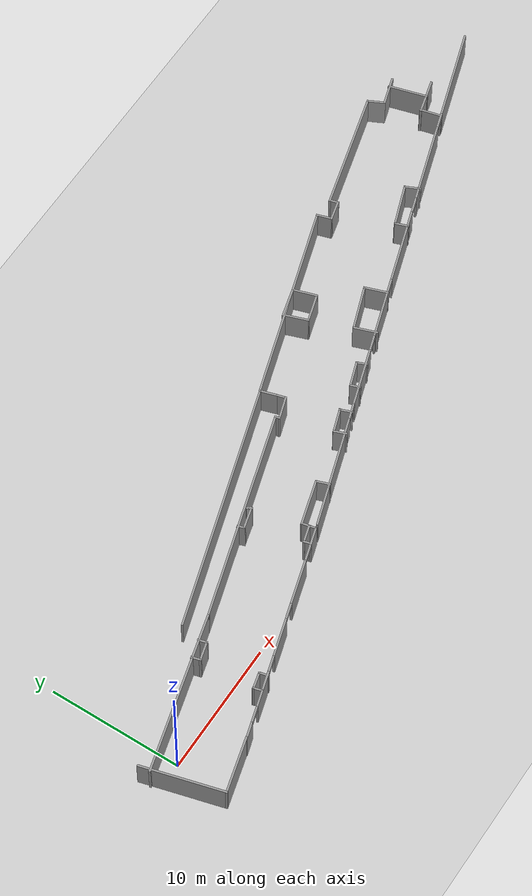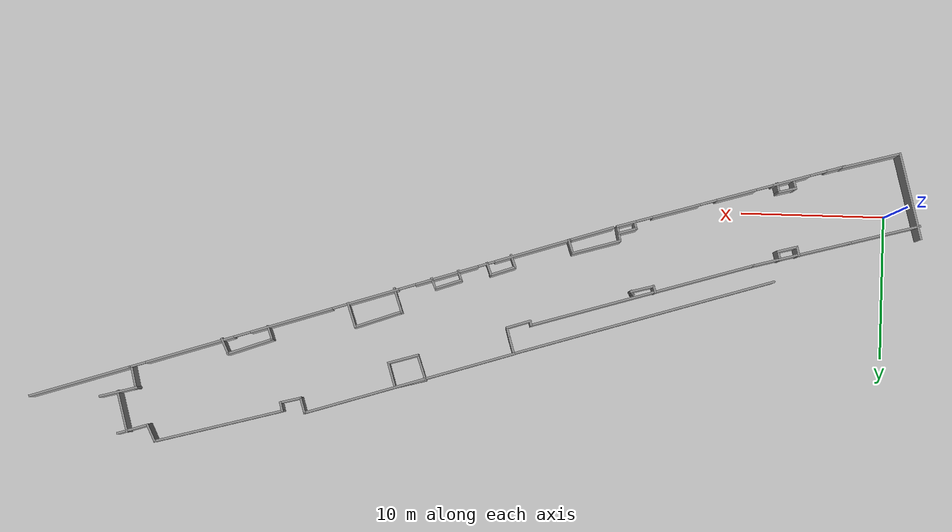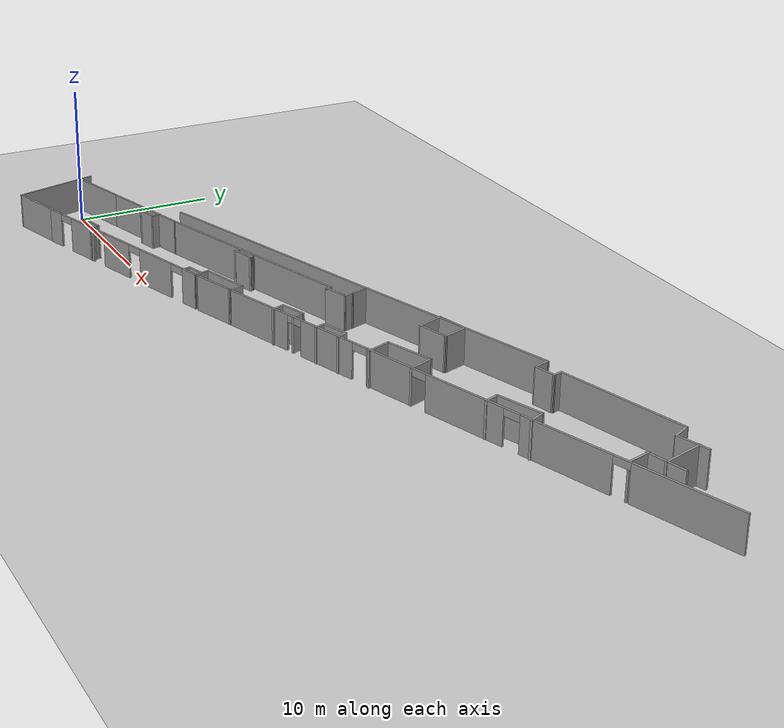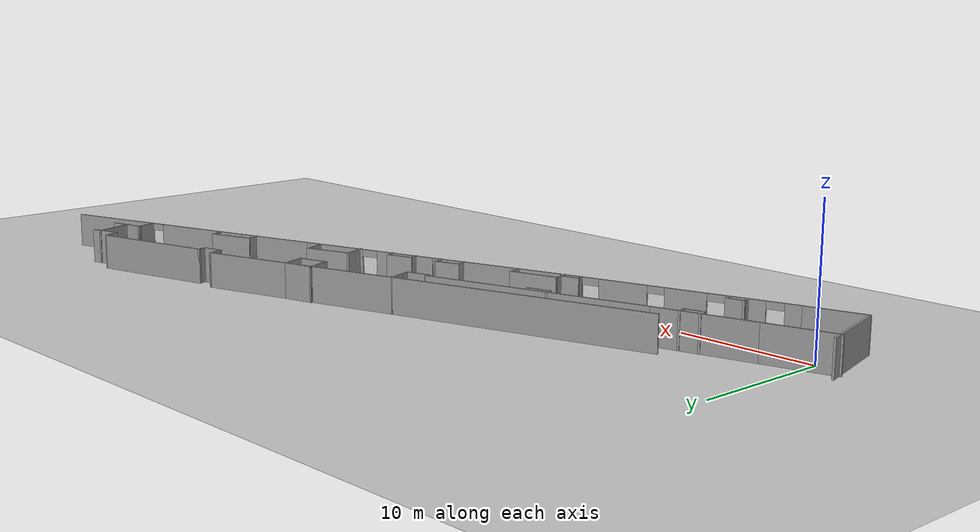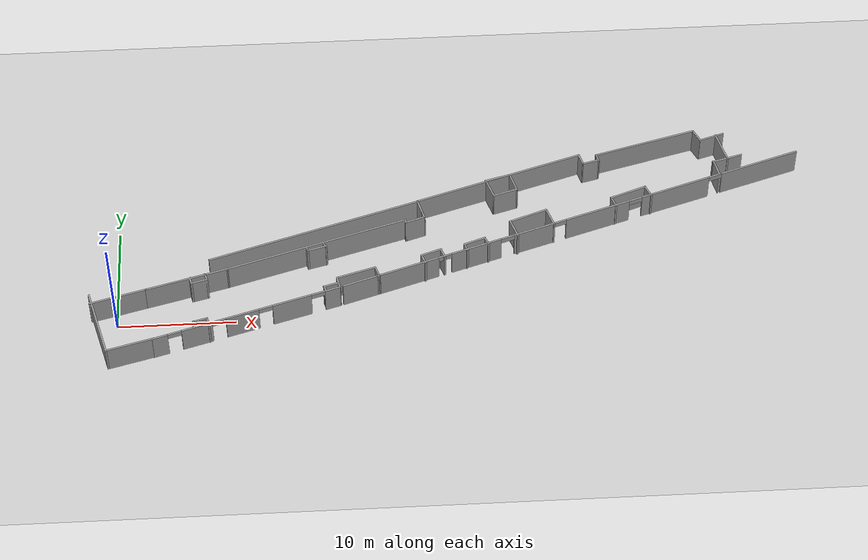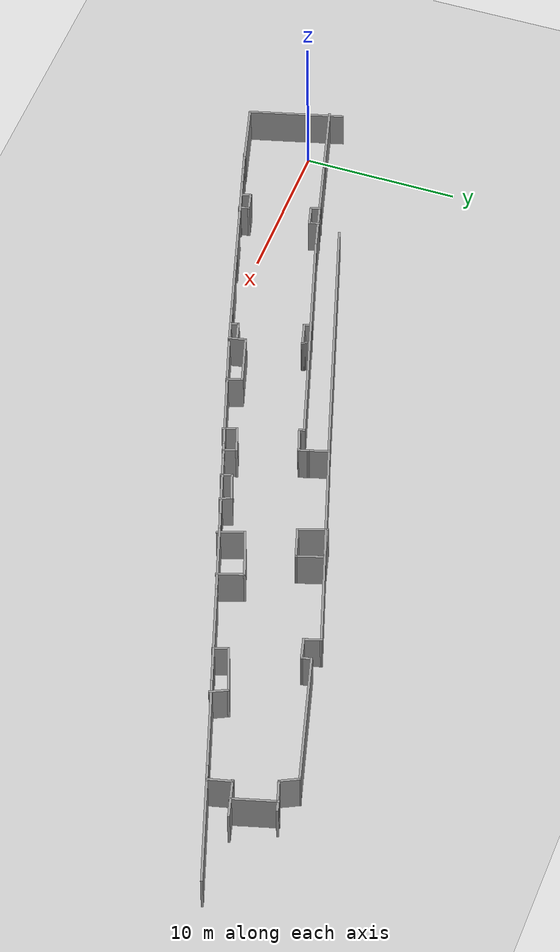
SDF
<sdf version="1.7">
 <world name="default">
  <light name="sun" type="directional">
   <pose>0 0 10 0 -0 0</pose>
   <diffuse>0.8 0.8 0.8 1</diffuse>
   <specular>0.2 0.2 0.2 1</specular>
   <attenuation>
    <range>1000</range>
    <constant>0.9</constant>
    <linear>0.01</linear>
    <quadratic>0.001</quadratic>
   </attenuation>
   <direction>-0.5 0.1 -0.9</direction>
   <spot><inner_angle>0</inner_angle><outer_angle>0</outer_angle><falloff>0</falloff></spot>
  </light>
  <model name="ground_plane">
   <static>1</static>
   <link name="link">
    <collision name="collision">
     <geometry><plane><normal>0 0 1</normal><size>100 100</size></plane></geometry>
     <surface><friction><ode><mu>100</mu><mu2>50</mu2></ode></friction></surface>
    </collision>
    <visual name="visual">
     <cast_shadows>0</cast_shadows>
     <geometry><plane><normal>0 0 1</normal><size>100 100</size></plane></geometry>
     <material>
      <script><uri>file://media/materials/scripts/gazebo.material</uri><name>Gazebo/Grey</name></script>
     </material>
    </visual>
   </link>
  </model>
  <gravity>0 0 -9.8</gravity>
  <magnetic_field>6e-06 2.3e-05 -4.2e-05</magnetic_field>
  <atmosphere type="adiabatic"/>
  <physics type="ode">
   <max_step_size>0.001</max_step_size>
   <real_time_factor>1</real_time_factor>
   <real_time_update_rate>1000</real_time_update_rate>
  </physics>
  <scene><ambient>0.4 0.4 0.4 1</ambient><background>0.7 0.7 0.7 1</background><shadows>1</shadows></scene>
  <audio><device>default</device></audio>
  <spherical_coordinates>
   <surface_model>EARTH_WGS84</surface_model>
   <latitude_deg>0</latitude_deg>
   <longitude_deg>0</longitude_deg>
   <elevation>0</elevation>
   <heading_deg>0</heading_deg>
  </spherical_coordinates>
  <model name="thesis_map_layout">
   <pose>28.5609 7.19501 0 0 -0 0</pose>
   <link name="Wall_100">
    <collision name="Wall_100_Collision">
     <geometry><box><size>1.01029 0.15 2.5</size></box></geometry>
     <pose>0 0 1.25 0 -0 0</pose>
    </collision>
    <visual name="Wall_100_Visual">
     <pose>0 0 1.25 0 -0 0</pose>
     <geometry><box><size>1.01029 0.15 2.5</size></box></geometry>
     <material>
      <script><uri>file://media/materials/scripts/gazebo.material</uri><name>Gazebo/Grey</name></script>
      <ambient>1 1 1 1</ambient>
     </material>
     <meta><layer>0</layer></meta>
    </visual>
    <pose>-2.47238 -3.22286 0 0 -0 1.93203</pose>
   </link>
   <link name="Wall_101">
    <collision name="Wall_101_Collision">
     <geometry><box><size>1.9378 0.15 2.5</size></box></geometry>
     <pose>0 0 1.25 0 -0 0</pose>
    </collision>
    <visual name="Wall_101_Visual">
     <pose>0 0 1.25 0 -0 0</pose>
     <geometry><box><size>1.9378 0.15 2.5</size></box></geometry>
     <material>
      <script><uri>file://media/materials/scripts/gazebo.material</uri><name>Gazebo/Grey</name></script>
      <ambient>1 1 1 1</ambient>
     </material>
     <meta><layer>0</layer></meta>
    </visual>
    <pose>-1.77963 -2.51114 0 0 -0 0.33305</pose>
   </link>
   <link name="Wall_102">
    <collision name="Wall_102_Collision">
     <geometry><box><size>1.00133 0.15 2.5</size></box></geometry>
     <pose>0 0 1.25 0 -0 0</pose>
    </collision>
    <visual name="Wall_102_Visual">
     <pose>0 0 1.25 0 -0 0</pose>
     <geometry><box><size>1.00133 0.15 2.5</size></box></geometry>
     <material>
      <script><uri>file://media/materials/scripts/gazebo.material</uri><name>Gazebo/Grey</name></script>
      <ambient>1 1 1 1</ambient>
     </material>
     <meta><layer>0</layer></meta>
    </visual>
    <pose>-0.808856 -2.62519 0 0 -0 -1.20656</pose>
   </link>
   <link name="Wall_13">
    <collision name="Wall_13_Collision">
     <geometry><box><size>0.434143 0.15 2.5</size></box></geometry>
     <pose>0 0 1.25 0 -0 0</pose>
    </collision>
    <visual name="Wall_13_Visual">
     <pose>0 0 1.25 0 -0 0</pose>
     <geometry><box><size>0.434143 0.15 2.5</size></box></geometry>
     <material>
      <script><uri>file://media/materials/scripts/gazebo.material</uri><name>Gazebo/Grey</name></script>
      <ambient>1 1 1 1</ambient>
     </material>
     <meta><layer>0</layer></meta>
    </visual>
    <pose>-3.81763 1.04916 0 0 -0 -1.34323</pose>
   </link>
   <link name="Wall_14">
    <collision name="Wall_14_Collision">
     <geometry><box><size>1.84256 0.15 2.5</size></box></geometry>
     <pose>0 0 1.25 0 -0 0</pose>
    </collision>
    <visual name="Wall_14_Visual">
     <pose>0 0 1.25 0 -0 0</pose>
     <geometry><box><size>1.84256 0.15 2.5</size></box></geometry>
     <material>
      <script><uri>file://media/materials/scripts/gazebo.material</uri><name>Gazebo/Grey</name></script>
      <ambient>1 1 1 1</ambient>
     </material>
     <meta><layer>0</layer></meta>
    </visual>
    <pose>-2.98913 1.16272 0 0 -0 0.313103</pose>
   </link>
   <link name="Wall_15">
    <collision name="Wall_15_Collision">
     <geometry><box><size>0.75 0.15 2.5</size></box></geometry>
     <pose>0 0 1.25 0 -0 0</pose>
    </collision>
    <visual name="Wall_15_Visual">
     <pose>0 0 1.25 0 -0 0</pose>
     <geometry><box><size>0.75 0.15 2.5</size></box></geometry>
     <material>
      <script><uri>file://media/materials/scripts/gazebo.material</uri><name>Gazebo/Grey</name></script>
      <ambient>1 1 1 1</ambient>
     </material>
     <meta><layer>0</layer></meta>
    </visual>
    <pose>-2.26164 1.71316 0 0 -0 1.8326</pose>
   </link>
   <link name="Wall_17">
    <collision name="Wall_17_Collision">
     <geometry><box><size>2.26603 0.15 2.5</size></box></geometry>
     <pose>0 0 1.25 0 -0 0</pose>
    </collision>
    <visual name="Wall_17_Visual">
     <pose>0 0 1.25 0 -0 0</pose>
     <geometry><box><size>2.26603 0.15 2.5</size></box></geometry>
     <material>
      <script><uri>file://media/materials/scripts/gazebo.material</uri><name>Gazebo/Grey</name></script>
      <ambient>1 1 1 1</ambient>
     </material>
     <meta><layer>0</layer></meta>
    </visual>
    <pose>4.98412 3.82097 0 0 -0 -2.85213</pose>
   </link>
   <link name="Wall_18">
    <collision name="Wall_18_Collision">
     <geometry><box><size>1.96955 0.15 2.5</size></box></geometry>
     <pose>0 0 1.25 0 -0 0</pose>
    </collision>
    <visual name="Wall_18_Visual">
     <pose>0 0 1.25 0 -0 0</pose>
     <geometry><box><size>1.96955 0.15 2.5</size></box></geometry>
     <material>
      <script><uri>file://media/materials/scripts/gazebo.material</uri><name>Gazebo/Grey</name></script>
      <ambient>1 1 1 1</ambient>
     </material>
     <meta><layer>0</layer></meta>
    </visual>
    <pose>3.67271 4.37907 0 0 -0 1.90371</pose>
   </link>
   <link name="Wall_2">
    <collision name="Wall_2_Collision">
     <geometry><box><size>16.1347 0.15 2.5</size></box></geometry>
     <pose>0 0 1.25 0 -0 0</pose>
    </collision>
    <visual name="Wall_2_Visual">
     <pose>0 0 1.25 0 -0 0</pose>
     <geometry><box><size>16.1347 0.15 2.5</size></box></geometry>
     <material>
      <script><uri>file://media/materials/scripts/gazebo.material</uri><name>Gazebo/Grey</name></script>
      <ambient>1 1 1 1</ambient>
     </material>
     <meta><layer>0</layer></meta>
    </visual>
    <pose>-11.5313 -1.10993 0 0 -0 0.291577</pose>
   </link>
   <link name="Wall_20">
    <collision name="Wall_20_Collision">
     <geometry><box><size>1.76663 0.15 2.5</size></box></geometry>
     <pose>0 0 1.25 0 -0 0</pose>
    </collision>
    <visual name="Wall_20_Visual">
     <pose>0 0 1.25 0 -0 0</pose>
     <geometry><box><size>1.76663 0.15 2.5</size></box></geometry>
     <material>
      <script><uri>file://media/materials/scripts/gazebo.material</uri><name>Gazebo/Grey</name></script>
      <ambient>1 1 1 1</ambient>
     </material>
     <meta><layer>0</layer></meta>
    </visual>
    <pose>5.76094 4.8957 0 0 -0 1.8686</pose>
   </link>
   <link name="Wall_22">
    <collision name="Wall_22_Collision">
     <geometry><box><size>0.75 0.15 2.5</size></box></geometry>
     <pose>0 0 1.25 0 -0 0</pose>
    </collision>
    <visual name="Wall_22_Visual">
     <pose>0 0 1.25 0 -0 0</pose>
     <geometry><box><size>0.75 0.15 2.5</size></box></geometry>
     <material>
      <script><uri>file://media/materials/scripts/gazebo.material</uri><name>Gazebo/Grey</name></script>
      <ambient>1 1 1 1</ambient>
     </material>
     <meta><layer>0</layer></meta>
    </visual>
    <pose>13.3395 7.38538 0 0 -0 -1.309</pose>
   </link>
   <link name="Wall_23">
    <collision name="Wall_23_Collision">
     <geometry><box><size>1.59485 0.15 2.5</size></box></geometry>
     <pose>0 0 1.25 0 -0 0</pose>
    </collision>
    <visual name="Wall_23_Visual">
     <pose>0 0 1.25 0 -0 0</pose>
     <geometry><box><size>1.59485 0.15 2.5</size></box></geometry>
     <material>
      <script><uri>file://media/materials/scripts/gazebo.material</uri><name>Gazebo/Grey</name></script>
      <ambient>1 1 1 1</ambient>
     </material>
     <meta><layer>0</layer></meta>
    </visual>
    <pose>12.7168 6.91852 0 0 -0 -2.89394</pose>
   </link>
   <link name="Wall_24">
    <collision name="Wall_24_Collision">
     <geometry><box><size>1.21308 0.15 2.5</size></box></geometry>
     <pose>0 0 1.25 0 -0 0</pose>
    </collision>
    <visual name="Wall_24_Visual">
     <pose>0 0 1.25 0 -0 0</pose>
     <geometry><box><size>1.21308 0.15 2.5</size></box></geometry>
     <material>
      <script><uri>file://media/materials/scripts/gazebo.material</uri><name>Gazebo/Grey</name></script>
      <ambient>1 1 1 1</ambient>
     </material>
     <meta><layer>0</layer></meta>
    </visual>
    <pose>11.8621 7.2501 0 0 -0 1.86524</pose>
   </link>
   <link name="Wall_26">
    <collision name="Wall_26_Collision">
     <geometry><box><size>0.602454 0.15 2.5</size></box></geometry>
     <pose>0 0 1.25 0 -0 0</pose>
    </collision>
    <visual name="Wall_26_Visual">
     <pose>0 0 1.25 0 -0 0</pose>
     <geometry><box><size>0.602454 0.15 2.5</size></box></geometry>
     <material>
      <script><uri>file://media/materials/scripts/gazebo.material</uri><name>Gazebo/Grey</name></script>
      <ambient>1 1 1 1</ambient>
     </material>
     <meta><layer>0</layer></meta>
    </visual>
    <pose>-12.3629 -1.56534 0 0 -0 -1.25823</pose>
   </link>
   <link name="Wall_27">
    <collision name="Wall_27_Collision">
     <geometry><box><size>1.75 0.15 2.5</size></box></geometry>
     <pose>0 0 1.25 0 -0 0</pose>
    </collision>
    <visual name="Wall_27_Visual">
     <pose>0 0 1.25 0 -0 0</pose>
     <geometry><box><size>1.75 0.15 2.5</size></box></geometry>
     <material>
      <script><uri>file://media/materials/scripts/gazebo.material</uri><name>Gazebo/Grey</name></script>
      <ambient>1 1 1 1</ambient>
     </material>
     <meta><layer>0</layer></meta>
    </visual>
    <pose>-11.5205 -1.55842 0 0 -0 0.261799</pose>
   </link>
   <link name="Wall_28">
    <collision name="Wall_28_Collision">
     <geometry><box><size>0.354386 0.15 2.5</size></box></geometry>
     <pose>0 0 1.25 0 -0 0</pose>
    </collision>
    <visual name="Wall_28_Visual">
     <pose>0 0 1.25 0 -0 0</pose>
     <geometry><box><size>0.354386 0.15 2.5</size></box></geometry>
     <material>
      <script><uri>file://media/materials/scripts/gazebo.material</uri><name>Gazebo/Grey</name></script>
      <ambient>1 1 1 1</ambient>
     </material>
     <meta><layer>0</layer></meta>
    </visual>
    <pose>-10.7971 -1.27696 0 0 -0 2.0739</pose>
   </link>
   <link name="Wall_29">
    <collision name="Wall_29_Collision">
     <geometry><box><size>0.25 0.15 2.5</size></box></geometry>
     <pose>0 0 1.25 0 -0 0</pose>
    </collision>
    <visual name="Wall_29_Visual">
     <pose>0 0 1.25 0 -0 0</pose>
     <geometry><box><size>0.25 0.15 2.5</size></box></geometry>
     <material>
      <script><uri>file://media/materials/scripts/gazebo.material</uri><name>Gazebo/Grey</name></script>
      <ambient>1 1 1 1</ambient>
     </material>
     <meta><layer>0</layer></meta>
    </visual>
    <pose>-10.8817 -1.15208 0 0 -0 2.35619</pose>
   </link>
   <link name="Wall_31">
    <collision name="Wall_31_Collision">
     <geometry><box><size>1.17965 0.15 2.5</size></box></geometry>
     <pose>0 0 1.25 0 -0 0</pose>
    </collision>
    <visual name="Wall_31_Visual">
     <pose>0 0 1.25 0 -0 0</pose>
     <geometry><box><size>1.17965 0.15 2.5</size></box></geometry>
     <material>
      <script><uri>file://media/materials/scripts/gazebo.material</uri><name>Gazebo/Grey</name></script>
      <ambient>1 1 1 1</ambient>
     </material>
     <meta><layer>0</layer></meta>
    </visual>
    <pose>-9.7846 -5.36556 0 0 -0 1.77167</pose>
   </link>
   <link name="Wall_32">
    <collision name="Wall_32_Collision">
     <geometry><box><size>3.54691 0.15 2.5</size></box></geometry>
     <pose>0 0 1.25 0 -0 0</pose>
    </collision>
    <visual name="Wall_32_Visual">
     <pose>0 0 1.25 0 -0 0</pose>
     <geometry><box><size>3.54691 0.15 2.5</size></box></geometry>
     <material>
      <script><uri>file://media/materials/scripts/gazebo.material</uri><name>Gazebo/Grey</name></script>
      <ambient>1 1 1 1</ambient>
     </material>
     <meta><layer>0</layer></meta>
    </visual>
    <pose>-8.25695 -4.38504 0 0 -0 0.284091</pose>
   </link>
   <link name="Wall_33">
    <collision name="Wall_33_Collision">
     <geometry><box><size>1.09945 0.15 2.5</size></box></geometry>
     <pose>0 0 1.25 0 -0 0</pose>
    </collision>
    <visual name="Wall_33_Visual">
     <pose>0 0 1.25 0 -0 0</pose>
     <geometry><box><size>1.09945 0.15 2.5</size></box></geometry>
     <material>
      <script><uri>file://media/materials/scripts/gazebo.material</uri><name>Gazebo/Grey</name></script>
      <ambient>1 1 1 1</ambient>
     </material>
     <meta><layer>0</layer></meta>
    </visual>
    <pose>-6.4563 -4.35765 0 0 -0 -1.23785</pose>
   </link>
   <link name="Wall_34">
    <collision name="Wall_34_Collision">
     <geometry><box><size>0.332125 0.15 2.5</size></box></geometry>
     <pose>0 0 1.25 0 -0 0</pose>
    </collision>
    <visual name="Wall_34_Visual">
     <pose>0 0 1.25 0 -0 0</pose>
     <geometry><box><size>0.332125 0.15 2.5</size></box></geometry>
     <material>
      <script><uri>file://media/materials/scripts/gazebo.material</uri><name>Gazebo/Grey</name></script>
      <ambient>1 1 1 1</ambient>
     </material>
     <meta><layer>0</layer></meta>
    </visual>
    <pose>-6.38976 -4.82725 0 0 -0 -2.90945</pose>
   </link>
   <link name="Wall_36">
    <collision name="Wall_36_Collision">
     <geometry><box><size>2.25 0.15 2.5</size></box></geometry>
     <pose>0 0 1.25 0 -0 0</pose>
    </collision>
    <visual name="Wall_36_Visual">
     <pose>0 0 1.25 0 -0 0</pose>
     <geometry><box><size>2.25 0.15 2.5</size></box></geometry>
     <material>
      <script><uri>file://media/materials/scripts/gazebo.material</uri><name>Gazebo/Grey</name></script>
      <ambient>1 1 1 1</ambient>
     </material>
     <meta><layer>0</layer></meta>
    </visual>
    <pose>4.38953 5.51094 0 0 -0 -2.87979</pose>
   </link>
   <link name="Wall_38">
    <collision name="Wall_38_Collision">
     <geometry><box><size>1.42806 0.15 2.5</size></box></geometry>
     <pose>0 0 1.25 0 -0 0</pose>
    </collision>
    <visual name="Wall_38_Visual">
     <pose>0 0 1.25 0 -0 0</pose>
     <geometry><box><size>1.42806 0.15 2.5</size></box></geometry>
     <material>
      <script><uri>file://media/materials/scripts/gazebo.material</uri><name>Gazebo/Grey</name></script>
      <ambient>1 1 1 1</ambient>
     </material>
     <meta><layer>0</layer></meta>
    </visual>
    <pose>-2.52388 2.61473 0 0 -0 1.86383</pose>
   </link>
   <link name="Wall_39">
    <collision name="Wall_39_Collision">
     <geometry><box><size>18.9511 0.15 2.5</size></box></geometry>
     <pose>0 0 1.25 0 -0 0</pose>
    </collision>
    <visual name="Wall_39_Visual">
     <pose>0 0 1.25 0 -0 0</pose>
     <geometry><box><size>18.9511 0.15 2.5</size></box></geometry>
     <material>
      <script><uri>file://media/materials/scripts/gazebo.material</uri><name>Gazebo/Grey</name></script>
      <ambient>1 1 1 1</ambient>
     </material>
     <meta><layer>0</layer></meta>
    </visual>
    <pose>-11.692 0.437399 0 0 -0 -2.8426</pose>
   </link>
   <link name="Wall_4">
    <pose>10.7384 0.684157 0 0 -0 0.310961</pose>
    <visual name="Wall_4_Visual_0">
     <pose>-16.8528 0 1.25 0 -0 0</pose>
     <geometry><box><size>8.65054 0.15 2.5</size></box></geometry>
     <material>
      <script><uri>file://media/materials/scripts/gazebo.material</uri><name>Gazebo/Grey</name></script>
      <ambient>1 1 1 1</ambient>
     </material>
     <meta><layer>0</layer></meta>
    </visual>
    <collision name="Wall_4_Collision_0">
     <geometry><box><size>8.65054 0.15 2.5</size></box></geometry>
     <pose>-16.8528 0 1.25 0 -0 0</pose>
    </collision>
    <visual name="Wall_4_Visual_1">
     <pose>-9.05488 0 1.25 0 -0 0</pose>
     <geometry><box><size>4.54538 0.15 2.5</size></box></geometry>
     <material>
      <script><uri>file://media/materials/scripts/gazebo.material</uri><name>Gazebo/Grey</name></script>
      <ambient>1 1 1 1</ambient>
     </material>
     <meta><layer>0</layer></meta>
    </visual>
    <collision name="Wall_4_Collision_1">
     <geometry><box><size>4.54538 0.15 2.5</size></box></geometry>
     <pose>-9.05488 0 1.25 0 -0 0</pose>
    </collision>
    <visual name="Wall_4_Visual_2">
     <pose>-3.77148 0 1.25 0 -0 0</pose>
     <geometry><box><size>3.62143 0.15 2.5</size></box></geometry>
     <material>
      <script><uri>file://media/materials/scripts/gazebo.material</uri><name>Gazebo/Grey</name></script>
      <ambient>1 1 1 1</ambient>
     </material>
     <meta><layer>0</layer></meta>
    </visual>
    <collision name="Wall_4_Collision_2">
     <geometry><box><size>3.62143 0.15 2.5</size></box></geometry>
     <pose>-3.77148 0 1.25 0 -0 0</pose>
    </collision>
    <visual name="Wall_4_Visual_3">
     <pose>2.19963 0 1.25 0 -0 0</pose>
     <geometry><box><size>5.92078 0.15 2.5</size></box></geometry>
     <material>
      <script><uri>file://media/materials/scripts/gazebo.material</uri><name>Gazebo/Grey</name></script>
      <ambient>1 1 1 1</ambient>
     </material>
     <meta><layer>0</layer></meta>
    </visual>
    <collision name="Wall_4_Collision_3">
     <geometry><box><size>5.92078 0.15 2.5</size></box></geometry>
     <pose>2.19963 0 1.25 0 -0 0</pose>
    </collision>
    <visual name="Wall_4_Visual_4">
     <pose>9.54887 0 1.25 0 -0 0</pose>
     <geometry><box><size>6.3777 0.15 2.5</size></box></geometry>
     <material>
      <script><uri>file://media/materials/scripts/gazebo.material</uri><name>Gazebo/Grey</name></script>
      <ambient>1 1 1 1</ambient>
     </material>
     <meta><layer>0</layer></meta>
    </visual>
    <collision name="Wall_4_Collision_4">
     <geometry><box><size>6.3777 0.15 2.5</size></box></geometry>
     <pose>9.54887 0 1.25 0 -0 0</pose>
    </collision>
    <visual name="Wall_4_Visual_5">
     <pose>17.5579 0 1.25 0 -0 0</pose>
     <geometry><box><size>7.24039 0.15 2.5</size></box></geometry>
     <material>
      <script><uri>file://media/materials/scripts/gazebo.material</uri><name>Gazebo/Grey</name></script>
      <ambient>1 1 1 1</ambient>
     </material>
     <meta><layer>0</layer></meta>
    </visual>
    <collision name="Wall_4_Collision_5">
     <geometry><box><size>7.24039 0.15 2.5</size></box></geometry>
     <pose>17.5579 0 1.25 0 -0 0</pose>
    </collision>
    <visual name="Wall_4_Visual_6">
     <pose>-11.9276 0 2.25 0 -0 0</pose>
     <geometry><box><size>1.2 0.15 0.5</size></box></geometry>
     <material>
      <script><uri>file://media/materials/scripts/gazebo.material</uri><name>Gazebo/Grey</name></script>
      <ambient>1 1 1 1</ambient>
     </material>
     <meta><layer>0</layer></meta>
    </visual>
    <collision name="Wall_4_Collision_6">
     <geometry><box><size>1.2 0.15 0.5</size></box></geometry>
     <pose>-11.9276 0 2.25 0 -0 0</pose>
    </collision>
    <visual name="Wall_4_Visual_7">
     <pose>-6.18219 0 2.25 0 -0 0</pose>
     <geometry><box><size>1.2 0.15 0.5</size></box></geometry>
     <material>
      <script><uri>file://media/materials/scripts/gazebo.material</uri><name>Gazebo/Grey</name></script>
      <ambient>1 1 1 1</ambient>
     </material>
     <meta><layer>0</layer></meta>
    </visual>
    <collision name="Wall_4_Collision_7">
     <geometry><box><size>1.2 0.15 0.5</size></box></geometry>
     <pose>-6.18219 0 2.25 0 -0 0</pose>
    </collision>
    <visual name="Wall_4_Visual_8">
     <pose>-1.36076 0 2.25 0 -0 0</pose>
     <geometry><box><size>1.2 0.15 0.5</size></box></geometry>
     <material>
      <script><uri>file://media/materials/scripts/gazebo.material</uri><name>Gazebo/Grey</name></script>
      <ambient>1 1 1 1</ambient>
     </material>
     <meta><layer>0</layer></meta>
    </visual>
    <collision name="Wall_4_Collision_8">
     <geometry><box><size>1.2 0.15 0.5</size></box></geometry>
     <pose>-1.36076 0 2.25 0 -0 0</pose>
    </collision>
    <visual name="Wall_4_Visual_9">
     <pose>5.76002 0 2.25 0 -0 0</pose>
     <geometry><box><size>1.2 0.15 0.5</size></box></geometry>
     <material>
      <script><uri>file://media/materials/scripts/gazebo.material</uri><name>Gazebo/Grey</name></script>
      <ambient>1 1 1 1</ambient>
     </material>
     <meta><layer>0</layer></meta>
    </visual>
    <collision name="Wall_4_Collision_9">
     <geometry><box><size>1.2 0.15 0.5</size></box></geometry>
     <pose>5.76002 0 2.25 0 -0 0</pose>
    </collision>
    <visual name="Wall_4_Visual_10">
     <pose>13.3377 0 2.25 0 -0 0</pose>
     <geometry><box><size>1.2 0.15 0.5</size></box></geometry>
     <material>
      <script><uri>file://media/materials/scripts/gazebo.material</uri><name>Gazebo/Grey</name></script>
      <ambient>1 1 1 1</ambient>
     </material>
     <meta><layer>0</layer></meta>
    </visual>
    <collision name="Wall_4_Collision_10">
     <geometry><box><size>1.2 0.15 0.5</size></box></geometry>
     <pose>13.3377 0 2.25 0 -0 0</pose>
    </collision>
   </link>
   <link name="Wall_41">
    <collision name="Wall_41_Collision">
     <geometry><box><size>7.25 0.15 2.5</size></box></geometry>
     <pose>0 0 1.25 0 -0 0</pose>
    </collision>
    <visual name="Wall_41_Visual">
     <pose>0 0 1.25 0 -0 0</pose>
     <geometry><box><size>7.25 0.15 2.5</size></box></geometry>
     <material>
      <script><uri>file://media/materials/scripts/gazebo.material</uri><name>Gazebo/Grey</name></script>
      <ambient>1 1 1 1</ambient>
     </material>
     <meta><layer>0</layer></meta>
    </visual>
    <pose>-22.6153 -4.32624 0 0 -0 -2.87979</pose>
   </link>
   <link name="Wall_44">
    <pose>-17.5329 -8.19653 0 0 -0 0.288088</pose>
    <visual name="Wall_44_Visual_0">
     <pose>-7.5899 0 1.25 0 -0 0</pose>
     <geometry><box><size>1.3471 0.15 2.5</size></box></geometry>
     <material>
      <script><uri>file://media/materials/scripts/gazebo.material</uri><name>Gazebo/Grey</name></script>
      <ambient>1 1 1 1</ambient>
     </material>
     <meta><layer>0</layer></meta>
    </visual>
    <collision name="Wall_44_Collision_0">
     <geometry><box><size>1.3471 0.15 2.5</size></box></geometry>
     <pose>-7.5899 0 1.25 0 -0 0</pose>
    </collision>
    <visual name="Wall_44_Visual_1">
     <pose>-4.37869 0 1.25 0 -0 0</pose>
     <geometry><box><size>2.67533 0.15 2.5</size></box></geometry>
     <material>
      <script><uri>file://media/materials/scripts/gazebo.material</uri><name>Gazebo/Grey</name></script>
      <ambient>1 1 1 1</ambient>
     </material>
     <meta><layer>0</layer></meta>
    </visual>
    <collision name="Wall_44_Collision_1">
     <geometry><box><size>2.67533 0.15 2.5</size></box></geometry>
     <pose>-4.37869 0 1.25 0 -0 0</pose>
    </collision>
    <visual name="Wall_44_Visual_2">
     <pose>-0.404709 0 1.25 0 -0 0</pose>
     <geometry><box><size>2.87263 0.15 2.5</size></box></geometry>
     <material>
      <script><uri>file://media/materials/scripts/gazebo.material</uri><name>Gazebo/Grey</name></script>
      <ambient>1 1 1 1</ambient>
     </material>
     <meta><layer>0</layer></meta>
    </visual>
    <collision name="Wall_44_Collision_2">
     <geometry><box><size>2.87263 0.15 2.5</size></box></geometry>
     <pose>-0.404709 0 1.25 0 -0 0</pose>
    </collision>
    <visual name="Wall_44_Visual_3">
     <pose>3.9434 0 1.25 0 -0 0</pose>
     <geometry><box><size>3.42359 0.15 2.5</size></box></geometry>
     <material>
      <script><uri>file://media/materials/scripts/gazebo.material</uri><name>Gazebo/Grey</name></script>
      <ambient>1 1 1 1</ambient>
     </material>
     <meta><layer>0</layer></meta>
    </visual>
    <collision name="Wall_44_Collision_3">
     <geometry><box><size>3.42359 0.15 2.5</size></box></geometry>
     <pose>3.9434 0 1.25 0 -0 0</pose>
    </collision>
    <visual name="Wall_44_Visual_4">
     <pose>7.55932 0 1.25 0 -0 0</pose>
     <geometry><box><size>1.40826 0.15 2.5</size></box></geometry>
     <material>
      <script><uri>file://media/materials/scripts/gazebo.material</uri><name>Gazebo/Grey</name></script>
      <ambient>1 1 1 1</ambient>
     </material>
     <meta><layer>0</layer></meta>
    </visual>
    <collision name="Wall_44_Collision_4">
     <geometry><box><size>1.40826 0.15 2.5</size></box></geometry>
     <pose>7.55932 0 1.25 0 -0 0</pose>
    </collision>
    <visual name="Wall_44_Visual_5">
     <pose>-6.31635 0 2.25 0 -0 0</pose>
     <geometry><box><size>1.2 0.15 0.5</size></box></geometry>
     <material>
      <script><uri>file://media/materials/scripts/gazebo.material</uri><name>Gazebo/Grey</name></script>
      <ambient>1 1 1 1</ambient>
     </material>
     <meta><layer>0</layer></meta>
    </visual>
    <collision name="Wall_44_Collision_5">
     <geometry><box><size>1.2 0.15 0.5</size></box></geometry>
     <pose>-6.31635 0 2.25 0 -0 0</pose>
    </collision>
    <visual name="Wall_44_Visual_6">
     <pose>-2.44102 0 2.25 0 -0 0</pose>
     <geometry><box><size>1.2 0.15 0.5</size></box></geometry>
     <material>
      <script><uri>file://media/materials/scripts/gazebo.material</uri><name>Gazebo/Grey</name></script>
      <ambient>1 1 1 1</ambient>
     </material>
     <meta><layer>0</layer></meta>
    </visual>
    <collision name="Wall_44_Collision_6">
     <geometry><box><size>1.2 0.15 0.5</size></box></geometry>
     <pose>-2.44102 0 2.25 0 -0 0</pose>
    </collision>
    <visual name="Wall_44_Visual_7">
     <pose>1.63161 0 2.25 0 -0 0</pose>
     <geometry><box><size>1.2 0.15 0.5</size></box></geometry>
     <material>
      <script><uri>file://media/materials/scripts/gazebo.material</uri><name>Gazebo/Grey</name></script>
      <ambient>1 1 1 1</ambient>
     </material>
     <meta><layer>0</layer></meta>
    </visual>
    <collision name="Wall_44_Collision_7">
     <geometry><box><size>1.2 0.15 0.5</size></box></geometry>
     <pose>1.63161 0 2.25 0 -0 0</pose>
    </collision>
    <visual name="Wall_44_Visual_8">
     <pose>6.25519 0 2.25 0 -0 0</pose>
     <geometry><box><size>1.2 0.15 0.5</size></box></geometry>
     <material>
      <script><uri>file://media/materials/scripts/gazebo.material</uri><name>Gazebo/Grey</name></script>
      <ambient>1 1 1 1</ambient>
     </material>
     <meta><layer>0</layer></meta>
    </visual>
    <collision name="Wall_44_Collision_8">
     <geometry><box><size>1.2 0.15 0.5</size></box></geometry>
     <pose>6.25519 0 2.25 0 -0 0</pose>
    </collision>
   </link>
   <link name="Wall_46">
    <collision name="Wall_46_Collision">
     <geometry><box><size>1.0572 0.15 2.5</size></box></geometry>
     <pose>0 0 1.25 0 -0 0</pose>
    </collision>
    <visual name="Wall_46_Visual">
     <pose>0 0 1.25 0 -0 0</pose>
     <geometry><box><size>1.0572 0.15 2.5</size></box></geometry>
     <material>
      <script><uri>file://media/materials/scripts/gazebo.material</uri><name>Gazebo/Grey</name></script>
      <ambient>1 1 1 1</ambient>
     </material>
     <meta><layer>0</layer></meta>
    </visual>
    <pose>14.302 2.25564 0 0 -0 1.91429</pose>
   </link>
   <link name="Wall_47">
    <collision name="Wall_47_Collision">
     <geometry><box><size>3.36711 0.15 2.5</size></box></geometry>
     <pose>0 0 1.25 0 -0 0</pose>
    </collision>
    <visual name="Wall_47_Visual">
     <pose>0 0 1.25 0 -0 0</pose>
     <geometry><box><size>3.36711 0.15 2.5</size></box></geometry>
     <material>
      <script><uri>file://media/materials/scripts/gazebo.material</uri><name>Gazebo/Grey</name></script>
      <ambient>1 1 1 1</ambient>
     </material>
     <meta><layer>0</layer></meta>
    </visual>
    <pose>15.6633 3.27138 0 0 -0 0.344434</pose>
   </link>
   <link name="Wall_48">
    <collision name="Wall_48_Collision">
     <geometry><box><size>1.20616 0.15 2.5</size></box></geometry>
     <pose>0 0 1.25 0 -0 0</pose>
    </collision>
    <visual name="Wall_48_Visual">
     <pose>0 0 1.25 0 -0 0</pose>
     <geometry><box><size>1.20616 0.15 2.5</size></box></geometry>
     <material>
      <script><uri>file://media/materials/scripts/gazebo.material</uri><name>Gazebo/Grey</name></script>
      <ambient>1 1 1 1</ambient>
     </material>
     <meta><layer>0</layer></meta>
    </visual>
    <pose>17.4009 3.29061 0 0 -0 -1.13373</pose>
   </link>
   <link name="Wall_50">
    <collision name="Wall_50_Collision">
     <geometry><box><size>2.00393 0.15 2.5</size></box></geometry>
     <pose>0 0 1.25 0 -0 0</pose>
    </collision>
    <visual name="Wall_50_Visual">
     <pose>0 0 1.25 0 -0 0</pose>
     <geometry><box><size>2.00393 0.15 2.5</size></box></geometry>
     <material>
      <script><uri>file://media/materials/scripts/gazebo.material</uri><name>Gazebo/Grey</name></script>
      <ambient>1 1 1 1</ambient>
     </material>
     <meta><layer>0</layer></meta>
    </visual>
    <pose>1.99446 -1.4773 0 0 -0 0.336031</pose>
   </link>
   <link name="Wall_52">
    <collision name="Wall_52_Collision">
     <geometry><box><size>0.802448 0.15 2.5</size></box></geometry>
     <pose>0 0 1.25 0 -0 0</pose>
    </collision>
    <visual name="Wall_52_Visual">
     <pose>0 0 1.25 0 -0 0</pose>
     <geometry><box><size>0.802448 0.15 2.5</size></box></geometry>
     <material>
      <script><uri>file://media/materials/scripts/gazebo.material</uri><name>Gazebo/Grey</name></script>
      <ambient>1 1 1 1</ambient>
     </material>
     <meta><layer>0</layer></meta>
    </visual>
    <pose>1.21185 -2.10716 0 0 -0 -1.2289</pose>
   </link>
   <link name="Wall_55">
    <collision name="Wall_55_Collision">
     <geometry><box><size>0.86098 0.15 2.5</size></box></geometry>
     <pose>0 0 1.25 0 -0 0</pose>
    </collision>
    <visual name="Wall_55_Visual">
     <pose>0 0 1.25 0 -0 0</pose>
     <geometry><box><size>0.86098 0.15 2.5</size></box></geometry>
     <material>
      <script><uri>file://media/materials/scripts/gazebo.material</uri><name>Gazebo/Grey</name></script>
      <ambient>1 1 1 1</ambient>
     </material>
     <meta><layer>0</layer></meta>
    </visual>
    <pose>3.02012 -1.50296 0 0 -0 -1.16367</pose>
   </link>
   <link name="Wall_61">
    <collision name="Wall_61_Collision">
     <geometry><box><size>1.37883 0.15 2.5</size></box></geometry>
     <pose>0 0 1.25 0 -0 0</pose>
    </collision>
    <visual name="Wall_61_Visual">
     <pose>0 0 1.25 0 -0 0</pose>
     <geometry><box><size>1.37883 0.15 2.5</size></box></geometry>
     <material>
      <script><uri>file://media/materials/scripts/gazebo.material</uri><name>Gazebo/Grey</name></script>
      <ambient>1 1 1 1</ambient>
     </material>
     <meta><layer>0</layer></meta>
    </visual>
    <pose>-10.4089 -5.5762 0 0 -0 -2.86328</pose>
   </link>
   <link name="Wall_62">
    <collision name="Wall_62_Collision">
     <geometry><box><size>0.5 0.15 2.5</size></box></geometry>
     <pose>0 0 1.25 0 -0 0</pose>
    </collision>
    <visual name="Wall_62_Visual">
     <pose>0 0 1.25 0 -0 0</pose>
     <geometry><box><size>0.5 0.15 2.5</size></box></geometry>
     <material>
      <script><uri>file://media/materials/scripts/gazebo.material</uri><name>Gazebo/Grey</name></script>
      <ambient>1 1 1 1</ambient>
     </material>
     <meta><layer>0</layer></meta>
    </visual>
    <pose>-10.9412 -5.91404 0 0 -0 -1.309</pose>
   </link>
   <link name="Wall_64">
    <collision name="Wall_64_Collision">
     <geometry><box><size>3.53602 0.15 2.5</size></box></geometry>
     <pose>0 0 1.25 0 -0 0</pose>
    </collision>
    <visual name="Wall_64_Visual">
     <pose>0 0 1.25 0 -0 0</pose>
     <geometry><box><size>3.53602 0.15 2.5</size></box></geometry>
     <material>
      <script><uri>file://media/materials/scripts/gazebo.material</uri><name>Gazebo/Grey</name></script>
      <ambient>1 1 1 1</ambient>
     </material>
     <meta><layer>0</layer></meta>
    </visual>
    <pose>6.79165 1.10397 0 0 -0 0.34276</pose>
   </link>
   <link name="Wall_65">
    <collision name="Wall_65_Collision">
     <geometry><box><size>1.83312 0.15 2.5</size></box></geometry>
     <pose>0 0 1.25 0 -0 0</pose>
    </collision>
    <visual name="Wall_65_Visual">
     <pose>0 0 1.25 0 -0 0</pose>
     <geometry><box><size>1.83312 0.15 2.5</size></box></geometry>
     <material>
      <script><uri>file://media/materials/scripts/gazebo.material</uri><name>Gazebo/Grey</name></script>
      <ambient>1 1 1 1</ambient>
     </material>
     <meta><layer>0</layer></meta>
    </visual>
    <pose>8.66007 0.865726 0 0 -0 -1.2393</pose>
   </link>
   <link name="Wall_68">
    <collision name="Wall_68_Collision">
     <geometry><box><size>1.83453 0.15 2.5</size></box></geometry>
     <pose>0 0 1.25 0 -0 0</pose>
    </collision>
    <visual name="Wall_68_Visual">
     <pose>0 0 1.25 0 -0 0</pose>
     <geometry><box><size>1.83453 0.15 2.5</size></box></geometry>
     <material>
      <script><uri>file://media/materials/scripts/gazebo.material</uri><name>Gazebo/Grey</name></script>
      <ambient>1 1 1 1</ambient>
     </material>
     <meta><layer>0</layer></meta>
    </visual>
    <pose>5.46318 -0.260774 0 0 -0 -1.23687</pose>
   </link>
   <link name="Wall_7">
    <collision name="Wall_7_Collision">
     <geometry><box><size>9.25 0.15 2.5</size></box></geometry>
     <pose>0 0 1.25 0 -0 0</pose>
    </collision>
    <visual name="Wall_7_Visual">
     <pose>0 0 1.25 0 -0 0</pose>
     <geometry><box><size>9.25 0.15 2.5</size></box></geometry>
     <material>
      <script><uri>file://media/materials/scripts/gazebo.material</uri><name>Gazebo/Grey</name></script>
      <ambient>1 1 1 1</ambient>
     </material>
     <meta><layer>0</layer></meta>
    </visual>
    <pose>17.6568 8.85278 0 0 -0 0.261799</pose>
   </link>
   <link name="Wall_70">
    <collision name="Wall_70_Collision">
     <geometry><box><size>15.262 0.15 2.5</size></box></geometry>
     <pose>0 0 1.25 0 -0 0</pose>
    </collision>
    <visual name="Wall_70_Visual">
     <pose>0 0 1.25 0 -0 0</pose>
     <geometry><box><size>15.262 0.15 2.5</size></box></geometry>
     <material>
      <script><uri>file://media/materials/scripts/gazebo.material</uri><name>Gazebo/Grey</name></script>
      <ambient>1 1 1 1</ambient>
     </material>
     <meta><layer>0</layer></meta>
    </visual>
    <pose>4.4997 5.49264 0 0 -0 0.304599</pose>
   </link>
   <link name="Wall_73">
    <collision name="Wall_73_Collision">
     <geometry><box><size>0.75 0.15 2.5</size></box></geometry>
     <pose>0 0 1.25 0 -0 0</pose>
    </collision>
    <visual name="Wall_73_Visual">
     <pose>0 0 1.25 0 -0 0</pose>
     <geometry><box><size>0.75 0.15 2.5</size></box></geometry>
     <material>
      <script><uri>file://media/materials/scripts/gazebo.material</uri><name>Gazebo/Grey</name></script>
      <ambient>1 1 1 1</ambient>
     </material>
     <meta><layer>0</layer></meta>
    </visual>
    <pose>-20.8037 -8.89619 0 0 -0 1.8326</pose>
   </link>
   <link name="Wall_74">
    <collision name="Wall_74_Collision">
     <geometry><box><size>1.33603 0.15 2.5</size></box></geometry>
     <pose>0 0 1.25 0 -0 0</pose>
    </collision>
    <visual name="Wall_74_Visual">
     <pose>0 0 1.25 0 -0 0</pose>
     <geometry><box><size>1.33603 0.15 2.5</size></box></geometry>
     <material>
      <script><uri>file://media/materials/scripts/gazebo.material</uri><name>Gazebo/Grey</name></script>
      <ambient>1 1 1 1</ambient>
     </material>
     <meta><layer>0</layer></meta>
    </visual>
    <pose>-21.4559 -8.74757 0 0 -0 -2.89131</pose>
   </link>
   <link name="Wall_75">
    <collision name="Wall_75_Collision">
     <geometry><box><size>0.75 0.15 2.5</size></box></geometry>
     <pose>0 0 1.25 0 -0 0</pose>
    </collision>
    <visual name="Wall_75_Visual">
     <pose>0 0 1.25 0 -0 0</pose>
     <geometry><box><size>0.75 0.15 2.5</size></box></geometry>
     <material>
      <script><uri>file://media/materials/scripts/gazebo.material</uri><name>Gazebo/Grey</name></script>
      <ambient>1 1 1 1</ambient>
     </material>
     <meta><layer>0</layer></meta>
    </visual>
    <pose>-21.9527 -9.1691 0 0 -0 -1.309</pose>
   </link>
   <link name="Wall_78">
    <collision name="Wall_78_Collision">
     <geometry><box><size>0.75 0.15 2.5</size></box></geometry>
     <pose>0 0 1.25 0 -0 0</pose>
    </collision>
    <visual name="Wall_78_Visual">
     <pose>0 0 1.25 0 -0 0</pose>
     <geometry><box><size>0.75 0.15 2.5</size></box></geometry>
     <material>
      <script><uri>file://media/materials/scripts/gazebo.material</uri><name>Gazebo/Grey</name></script>
      <ambient>1 1 1 1</ambient>
     </material>
     <meta><layer>0</layer></meta>
    </visual>
    <pose>-22.2881 -4.50853 0 0 -0 -1.309</pose>
   </link>
   <link name="Wall_79">
    <collision name="Wall_79_Collision">
     <geometry><box><size>1.5 0.15 2.5</size></box></geometry>
     <pose>0 0 1.25 0 -0 0</pose>
    </collision>
    <visual name="Wall_79_Visual">
     <pose>0 0 1.25 0 -0 0</pose>
     <geometry><box><size>1.5 0.15 2.5</size></box></geometry>
     <material>
      <script><uri>file://media/materials/scripts/gazebo.material</uri><name>Gazebo/Grey</name></script>
      <ambient>1 1 1 1</ambient>
     </material>
     <meta><layer>0</layer></meta>
    </visual>
    <pose>-21.5585 -4.6236 0 0 -0 0.261799</pose>
   </link>
   <link name="Wall_80">
    <collision name="Wall_80_Collision">
     <geometry><box><size>0.75 0.15 2.5</size></box></geometry>
     <pose>0 0 1.25 0 -0 0</pose>
    </collision>
    <visual name="Wall_80_Visual">
     <pose>0 0 1.25 0 -0 0</pose>
     <geometry><box><size>0.75 0.15 2.5</size></box></geometry>
     <material>
      <script><uri>file://media/materials/scripts/gazebo.material</uri><name>Gazebo/Grey</name></script>
      <ambient>1 1 1 1</ambient>
     </material>
     <meta><layer>0</layer></meta>
    </visual>
    <pose>-20.9841 -4.15912 0 0 -0 1.8326</pose>
   </link>
   <link name="Wall_82">
    <collision name="Wall_82_Collision">
     <geometry><box><size>6.25 0.15 2.5</size></box></geometry>
     <pose>0 0 1.25 0 -0 0</pose>
    </collision>
    <visual name="Wall_82_Visual">
     <pose>0 0 1.25 0 -0 0</pose>
     <geometry><box><size>6.25 0.15 2.5</size></box></geometry>
     <material>
      <script><uri>file://media/materials/scripts/gazebo.material</uri><name>Gazebo/Grey</name></script>
      <ambient>1 1 1 1</ambient>
     </material>
     <meta><layer>0</layer></meta>
    </visual>
    <pose>-30.0425 -8.58304 0 0 -0 -1.309</pose>
   </link>
   <link name="Wall_83">
    <collision name="Wall_83_Collision">
     <geometry><box><size>4.25 0.15 2.5</size></box></geometry>
     <pose>0 0 1.25 0 -0 0</pose>
    </collision>
    <visual name="Wall_83_Visual">
     <pose>0 0 1.25 0 -0 0</pose>
     <geometry><box><size>4.25 0.15 2.5</size></box></geometry>
     <material>
      <script><uri>file://media/materials/scripts/gazebo.material</uri><name>Gazebo/Grey</name></script>
      <ambient>1 1 1 1</ambient>
     </material>
     <meta><layer>0</layer></meta>
    </visual>
    <pose>-27.273 -10.9985 0 0 -0 0.261799</pose>
   </link>
   <link name="Wall_86">
    <collision name="Wall_86_Collision">
     <geometry><box><size>5 0.15 2.5</size></box></geometry>
     <pose>0 0 1.25 0 -0 0</pose>
    </collision>
    <visual name="Wall_86_Visual">
     <pose>0 0 1.25 0 -0 0</pose>
     <geometry><box><size>5 0.15 2.5</size></box></geometry>
     <material>
      <script><uri>file://media/materials/scripts/gazebo.material</uri><name>Gazebo/Grey</name></script>
      <ambient>1 1 1 1</ambient>
     </material>
     <meta><layer>0</layer></meta>
    </visual>
    <pose>-28.3867 -5.87268 0 0 -0 -2.87979</pose>
   </link>
   <link name="Wall_88">
    <collision name="Wall_88_Collision">
     <geometry><box><size>1.37275 0.15 2.5</size></box></geometry>
     <pose>0 0 1.25 0 -0 0</pose>
    </collision>
    <visual name="Wall_88_Visual">
     <pose>0 0 1.25 0 -0 0</pose>
     <geometry><box><size>1.37275 0.15 2.5</size></box></geometry>
     <material>
      <script><uri>file://media/materials/scripts/gazebo.material</uri><name>Gazebo/Grey</name></script>
      <ambient>1 1 1 1</ambient>
     </material>
     <meta><layer>0</layer></meta>
    </visual>
    <pose>22.3193 9.48067 0 0 -0 -1.11791</pose>
   </link>
   <link name="Wall_89">
    <collision name="Wall_89_Collision">
     <geometry><box><size>2.28118 0.15 2.5</size></box></geometry>
     <pose>0 0 1.25 0 -0 0</pose>
    </collision>
    <visual name="Wall_89_Visual">
     <pose>0 0 1.25 0 -0 0</pose>
     <geometry><box><size>2.28118 0.15 2.5</size></box></geometry>
     <material>
      <script><uri>file://media/materials/scripts/gazebo.material</uri><name>Gazebo/Grey</name></script>
      <ambient>1 1 1 1</ambient>
     </material>
     <meta><layer>0</layer></meta>
    </visual>
    <pose>23.6218 9.24743 0 0 -0 0.301569</pose>
   </link>
   <link name="Wall_91">
    <collision name="Wall_91_Collision">
     <geometry><box><size>1.67152 0.15 2.5</size></box></geometry>
     <pose>0 0 1.25 0 -0 0</pose>
    </collision>
    <visual name="Wall_91_Visual">
     <pose>0 0 1.25 0 -0 0</pose>
     <geometry><box><size>1.67152 0.15 2.5</size></box></geometry>
     <material>
      <script><uri>file://media/materials/scripts/gazebo.material</uri><name>Gazebo/Grey</name></script>
      <ambient>1 1 1 1</ambient>
     </material>
     <meta><layer>0</layer></meta>
    </visual>
    <pose>23.6606 5.65658 0 0 -0 1.80178</pose>
   </link>
   <link name="Wall_92">
    <collision name="Wall_92_Collision">
     <geometry><box><size>2.75 0.15 2.5</size></box></geometry>
     <pose>0 0 1.25 0 -0 0</pose>
    </collision>
    <visual name="Wall_92_Visual">
     <pose>0 0 1.25 0 -0 0</pose>
     <geometry><box><size>2.75 0.15 2.5</size></box></geometry>
     <material>
      <script><uri>file://media/materials/scripts/gazebo.material</uri><name>Gazebo/Grey</name></script>
      <ambient>1 1 1 1</ambient>
     </material>
     <meta><layer>0</layer></meta>
    </visual>
    <pose>24.6959 6.68734 0 0 -0 0.261799</pose>
   </link>
   <link name="Wall_94">
    <collision name="Wall_94_Collision">
     <geometry><box><size>3 0.15 2.5</size></box></geometry>
     <pose>0 0 1.25 0 -0 0</pose>
    </collision>
    <visual name="Wall_94_Visual">
     <pose>0 0 1.25 0 -0 0</pose>
     <geometry><box><size>3 0.15 2.5</size></box></geometry>
     <material>
      <script><uri>file://media/materials/scripts/gazebo.material</uri><name>Gazebo/Grey</name></script>
      <ambient>1 1 1 1</ambient>
     </material>
     <meta><layer>0</layer></meta>
    </visual>
    <pose>24.3724 8.03561 0 0 -0 -1.309</pose>
   </link>
   <static>1</static>
  </model>
 </world>
</sdf>
